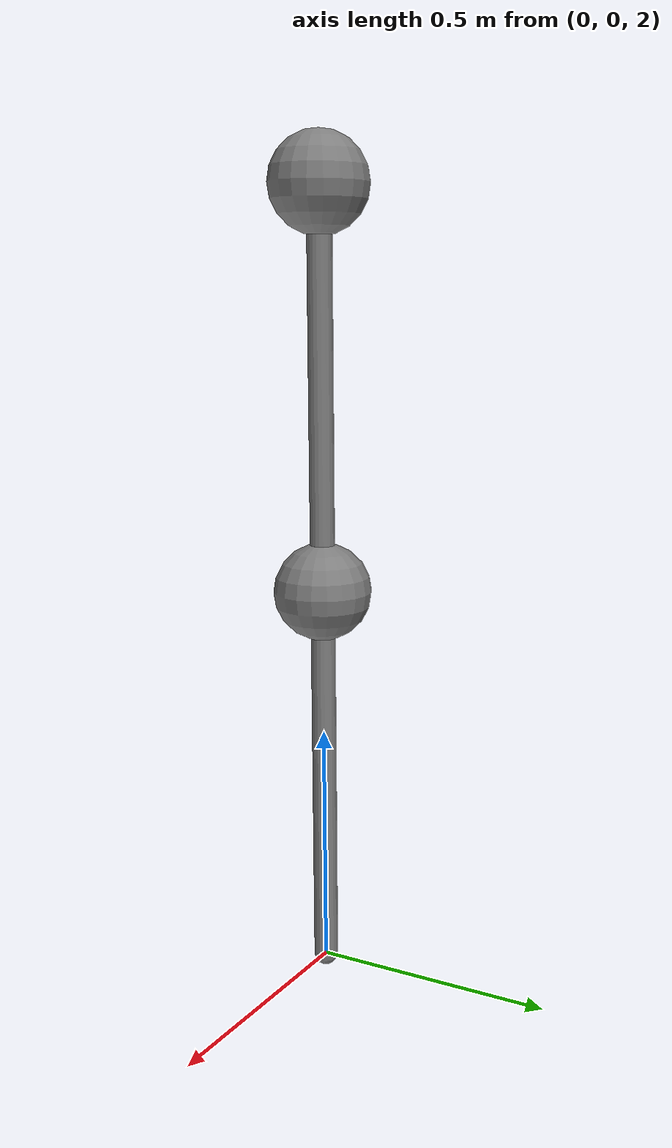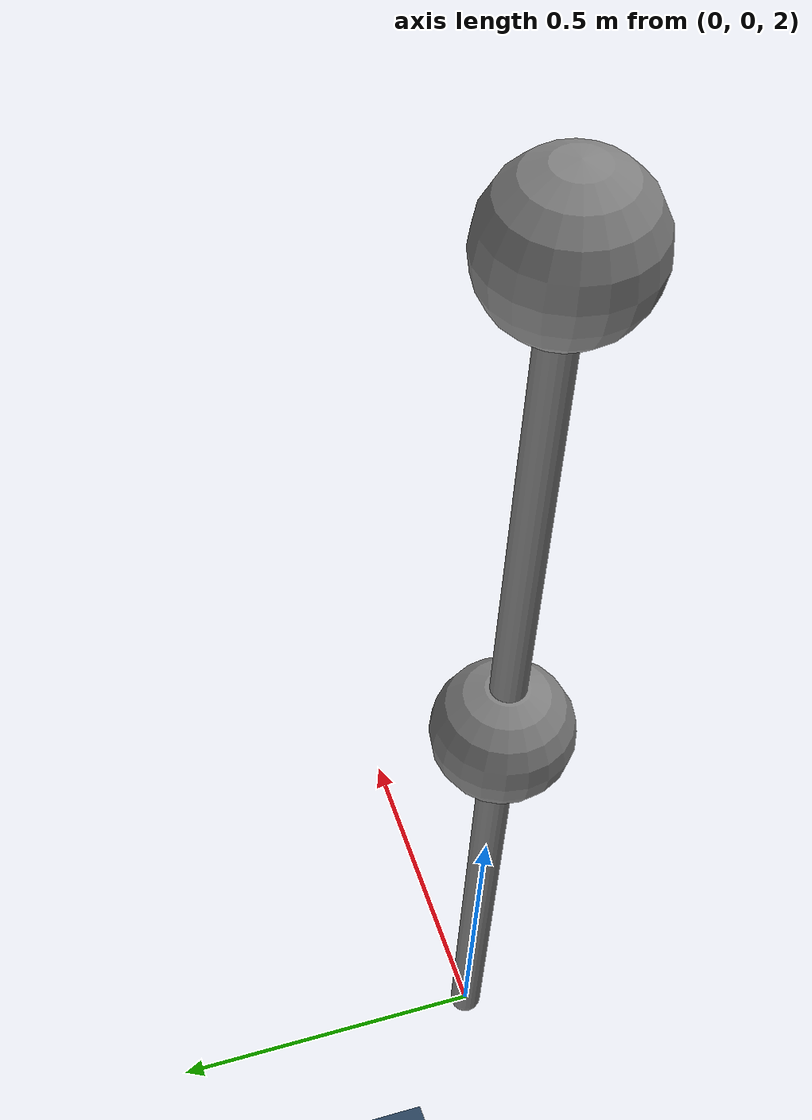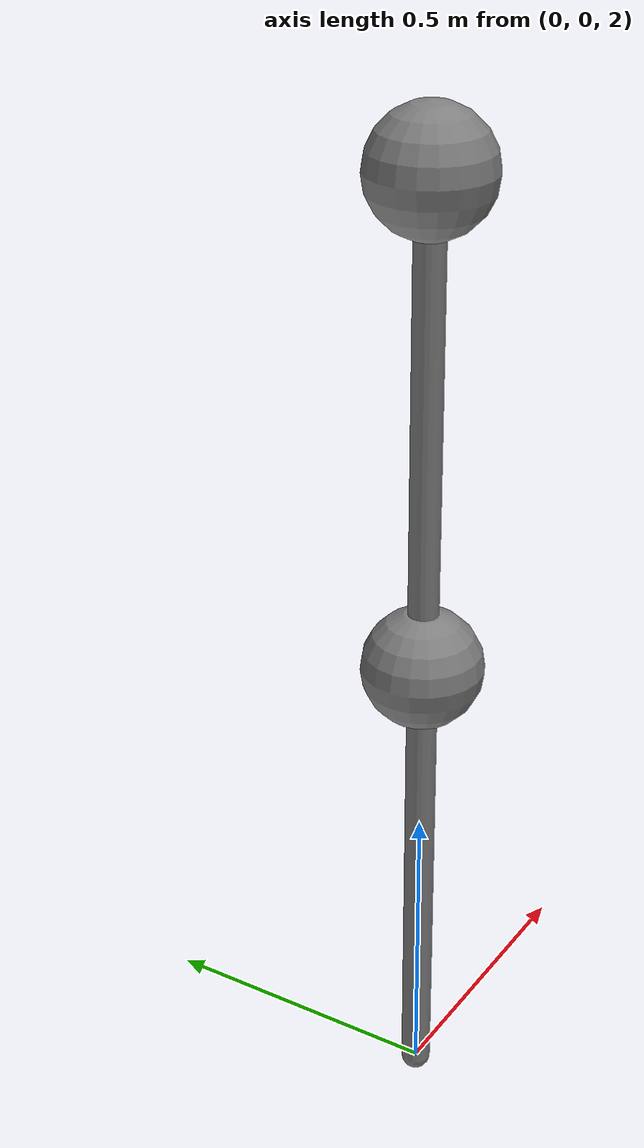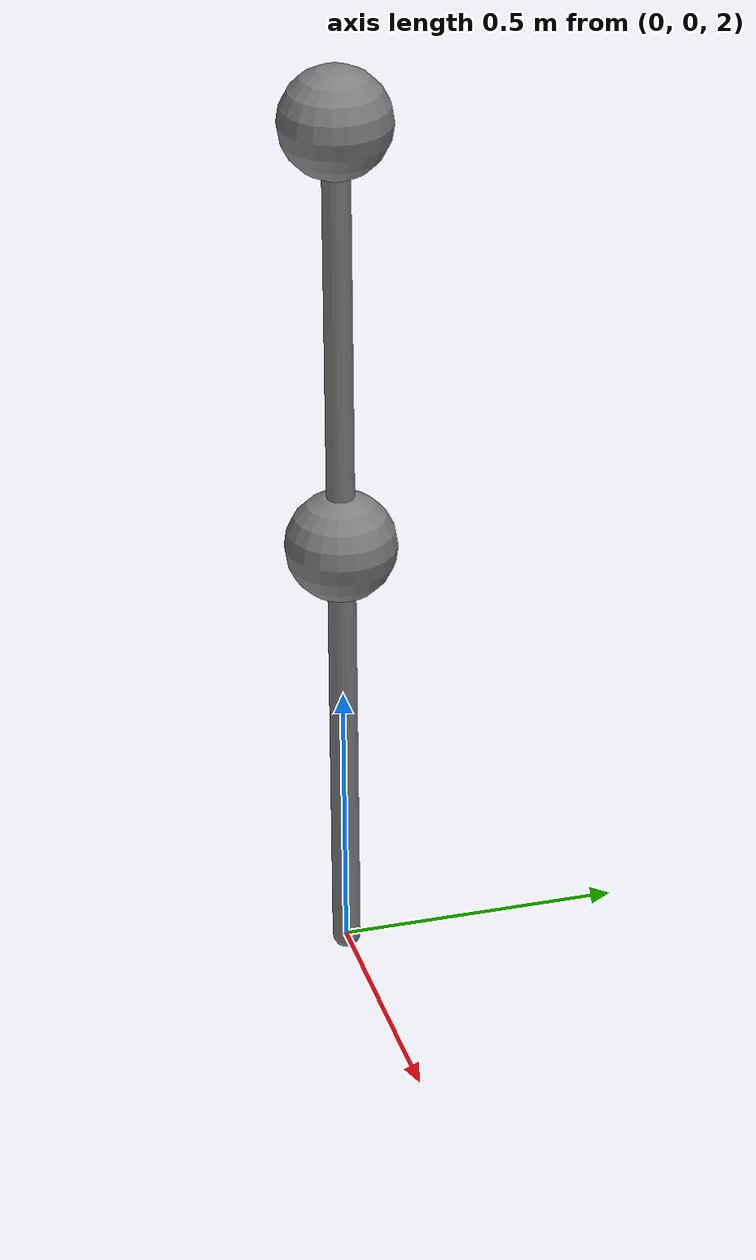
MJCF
<mujoco model="double_pendulum">

    <!-- Background texture -->
    <asset>
        <texture name="grid" type="2d" builtin="checker" rgb1=".1 .2 .3"
        rgb2=".2 .3 .4" width="100" height="100"/>
        <material name="grid" texture="grid" texrepeat="8 8" reflectance=".2"/>
    </asset>

    <worldbody>
        <!-- Place background -->
        <geom size="2 2 .01" type="plane" material="grid"/>
        <!-- Static light -->
        <light pos="0 0 5" dir="0 0 -1" diffuse=".8 .8 .8" specular=".3 .3 .3"/>

        <!-- Weightless pendulum -->
        <body name="pendulum_stick1" pos="0 0 2">
            <joint name="hinge1" type="hinge" axis="0 1 0" pos="0 0 0"/>
            <geom name="pendulum_stick_geom1" type="capsule" fromto="0 0 0 0 0 0.8" size="0.025"/>
            <inertial mass="0.0001" diaginertia="1e-5 1e-5 1e-5"  pos="0 0 0"/>

            <!-- Mass on the end of the pendulum -->
            <body name="pendulum1" pos="0 0 0.8">
                <geom name="pendulum_geom1" type="sphere" size="0.1"/>
                <inertial mass="0.5" diaginertia="2e-3 2e-3 2e-3" pos="0 0 0"/>

                <body name="pendulum_stick2" pos="0 0 0">
                    <joint name="hinge2" type="hinge" axis="0 1 0" pos="0 0 0"/>
                    <geom name="pendulum_stick_geom2" type="capsule" fromto="0 0 0 0 0 0.8" size="0.025"/>
                    <inertial mass="0.0001" diaginertia="1e-5 1e-5 1e-5"  pos="0 0 0"/>

                    <!-- Mass on the end of the pendulum -->
                    <body name="pendulum2" pos="0 0 0.8">
                        <geom name="pendulum_geom2" type="sphere" size="0.1"/>
                        <inertial mass="0.5" diaginertia="2e-3 2e-3 2e-3" pos="0 0 0"/>
                    </body>
                </body>
            </body>
        </body>

    </worldbody>

    <!-- Force actuator on the cart -->
    <actuator>
        <general joint="hinge1"/>
    </actuator>

</mujoco>
